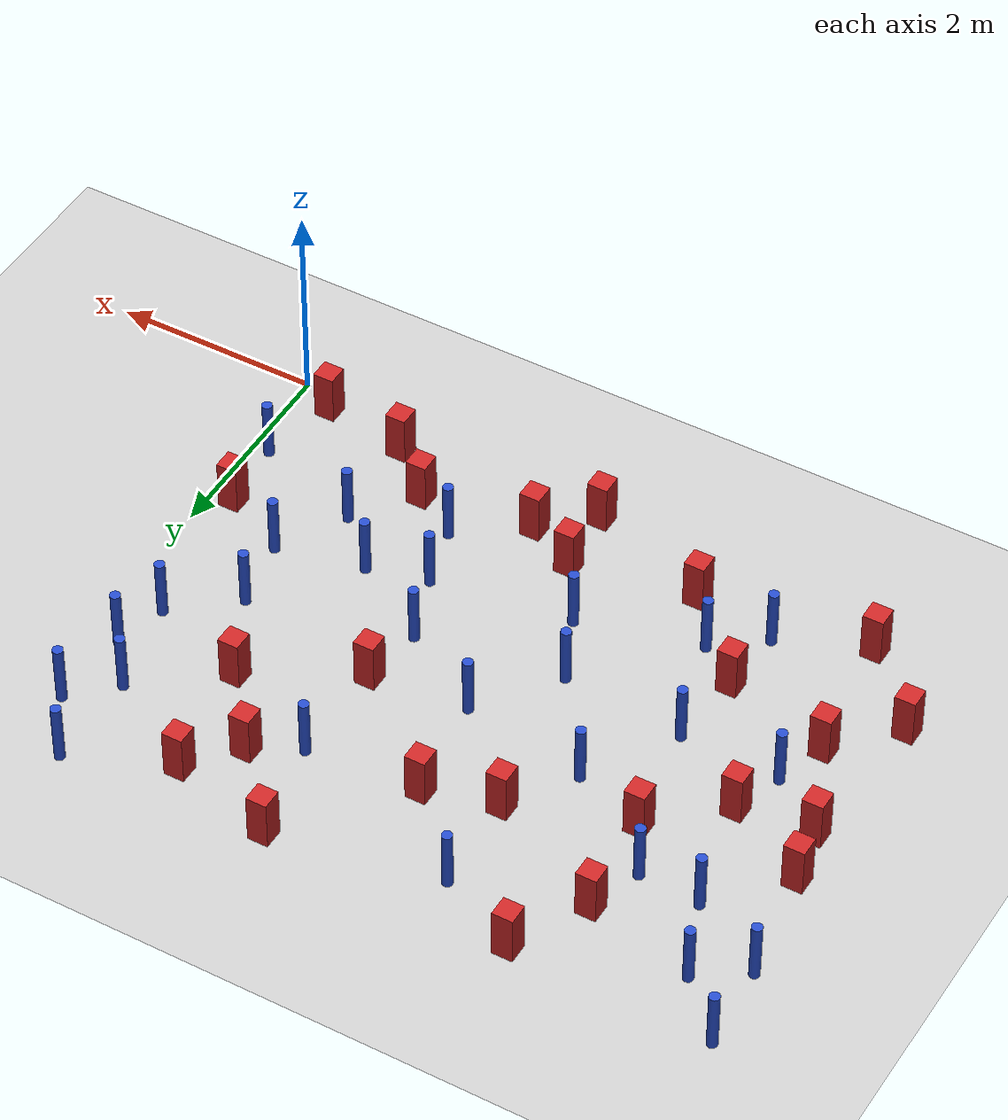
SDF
<sdf version="1.6">
 <world name="default">
  <model name="ground_plane">
   <static>1</static>
   <link name="link">
    <collision name="collision">
     <geometry><plane><normal>0 0 1</normal><size>100 100</size></plane></geometry>
     <surface><friction><ode><mu>100</mu><mu2>50</mu2></ode></friction></surface>
    </collision>
    <visual name="visual">
     <cast_shadows>0</cast_shadows>
     <geometry><plane><normal>0 0 1</normal><size>100 100</size></plane></geometry>
     <material>
      <ambient>1.0 1.0 1.0 1.0</ambient>
      <diffuse>0.8 0.8 0.8 1.0</diffuse>
      <specular>0.01 0.01 0.01 1.000000</specular>
     </material>
    </visual>
   </link>
  </model>
  <model name="square_post_obstacle2">
   <static>true</static>
   <pose>-2.59575525079 4.89425721059 1.91545236811e-07 -7.35059704564e-06 1.12565212e-07 2.39332434364e-05</pose>
   <link name="link">
    <pose>0 0 0.25 0 -0 0</pose>
    <inertial>
     <mass>100</mass>
     <inertia>
      <ixx>0.166667</ixx>
      <ixy>0</ixy>
      <ixz>0</ixz>
      <iyy>0.166667</iyy>
      <iyz>0</iyz>
      <izz>0.166667</izz>
     </inertia>
    </inertial>
    <collision name="collision"><geometry><box><size>.2 .2 .5</size></box></geometry></collision>
    <visual name="visual">
     <geometry><box><size>.2 .2 .5</size></box></geometry>
     <material>
      <script><name>Gazebo/Red</name><uri>file://media/materials/scripts/gazebo.material</uri></script>
     </material>
    </visual>
   </link>
  </model>
  <model name="pole_obstacle1">
   <static>true</static>
   <pose>-4.19937679218 4.57244880064 7.38925637345e-09 -8.47170692796e-08 1.24976764786e-08 -1.74513093032e-07</pose>
   <link name="link">
    <pose>0 0 0.3 0 -0 0</pose>
    <inertial>
     <mass>1</mass>
     <inertia><ixx>0.145833</ixx><ixy>0</ixy><ixz>0</ixz><iyy>0.145833</iyy><iyz>0</iyz><izz>0.125</izz></inertia>
    </inertial>
    <collision name="collision">
     <geometry><cylinder><radius>0.05</radius><length>.6</length></cylinder></geometry>
    </collision>
    <visual name="visual">
     <geometry><cylinder><radius>0.05</radius><length>.6</length></cylinder></geometry>
     <material>
      <script><name>Gazebo/Blue</name><uri>file://media/materials/scripts/gazebo.material</uri></script>
     </material>
    </visual>
   </link>
  </model>
  <model name="pole_obstacle6">
   <static>true</static>
   <pose>-6.42297541409 4.46587026032 7.38925637345e-09 -8.47170692796e-08 1.24976764786e-08 -1.74513093032e-07</pose>
   <link name="link">
    <pose>0 0 0.3 0 -0 0</pose>
    <inertial>
     <mass>1</mass>
     <inertia><ixx>0.145833</ixx><ixy>0</ixy><ixz>0</ixz><iyy>0.145833</iyy><iyz>0</iyz><izz>0.125</izz></inertia>
    </inertial>
    <collision name="collision">
     <geometry><cylinder><radius>0.05</radius><length>.6</length></cylinder></geometry>
    </collision>
    <visual name="visual">
     <geometry><cylinder><radius>0.05</radius><length>.6</length></cylinder></geometry>
     <material>
      <script><name>Gazebo/Blue</name><uri>file://media/materials/scripts/gazebo.material</uri></script>
     </material>
    </visual>
   </link>
  </model>
  <model name="pole_obstacle14">
   <static>true</static>
   <pose>-0.6309486153 4.05573531689 7.38925637345e-09 -8.471706928e-08 1.24976765086e-08 -1.74513093015e-07</pose>
   <link name="link">
    <pose>0 0 0.3 0 -0 0</pose>
    <inertial>
     <mass>1</mass>
     <inertia><ixx>0.145833</ixx><ixy>0</ixy><ixz>0</ixz><iyy>0.145833</iyy><iyz>0</iyz><izz>0.125</izz></inertia>
    </inertial>
    <collision name="collision">
     <geometry><cylinder><radius>0.05</radius><length>.6</length></cylinder></geometry>
    </collision>
    <visual name="visual">
     <geometry><cylinder><radius>0.05</radius><length>.6</length></cylinder></geometry>
     <material>
      <script><name>Gazebo/Blue</name><uri>file://media/materials/scripts/gazebo.material</uri></script>
     </material>
    </visual>
   </link>
  </model>
  <model name="pole_obstacle18">
   <static>true</static>
   <pose>-6.05022570618 2.16506669402 7.38925637345e-09 -8.47170692798e-08 1.24976764937e-08 -1.74513093023e-07</pose>
   <link name="link">
    <pose>0 0 0.3 0 -0 0</pose>
    <inertial>
     <mass>1</mass>
     <inertia><ixx>0.145833</ixx><ixy>0</ixy><ixz>0</ixz><iyy>0.145833</iyy><iyz>0</iyz><izz>0.125</izz></inertia>
    </inertial>
    <collision name="collision">
     <geometry><cylinder><radius>0.05</radius><length>.6</length></cylinder></geometry>
    </collision>
    <visual name="visual">
     <geometry><cylinder><radius>0.05</radius><length>.6</length></cylinder></geometry>
     <material>
      <script><name>Gazebo/Blue</name><uri>file://media/materials/scripts/gazebo.material</uri></script>
     </material>
    </visual>
   </link>
  </model>
  <model name="square_post_obstacle31">
   <static>true</static>
   <pose>-5.17602710416 1.40825064368 1.91545236811e-07 -7.35059704564e-06 1.12565212e-07 2.39332434364e-05</pose>
   <link name="link">
    <pose>0 0 0.25 0 -0 0</pose>
    <inertial>
     <mass>100</mass>
     <inertia>
      <ixx>0.166667</ixx>
      <ixy>0</ixy>
      <ixz>0</ixz>
      <iyy>0.166667</iyy>
      <iyz>0</iyz>
      <izz>0.166667</izz>
     </inertia>
    </inertial>
    <collision name="collision"><geometry><box><size>.2 .2 .5</size></box></geometry></collision>
    <visual name="visual">
     <geometry><box><size>.2 .2 .5</size></box></geometry>
     <material>
      <script><name>Gazebo/Red</name><uri>file://media/materials/scripts/gazebo.material</uri></script>
     </material>
    </visual>
   </link>
  </model>
  <model name="pole_obstacle35">
   <static>true</static>
   <pose>-2.39613981912 3.91076213373 7.38925637345e-09 -8.47170692798e-08 1.24976764939e-08 -1.74513093025e-07</pose>
   <link name="link">
    <pose>0 0 0.3 0 -0 0</pose>
    <inertial>
     <mass>1</mass>
     <inertia><ixx>0.145833</ixx><ixy>0</ixy><ixz>0</ixz><iyy>0.145833</iyy><iyz>0</iyz><izz>0.125</izz></inertia>
    </inertial>
    <collision name="collision">
     <geometry><cylinder><radius>0.05</radius><length>.6</length></cylinder></geometry>
    </collision>
    <visual name="visual">
     <geometry><cylinder><radius>0.05</radius><length>.6</length></cylinder></geometry>
     <material>
      <script><name>Gazebo/Blue</name><uri>file://media/materials/scripts/gazebo.material</uri></script>
     </material>
    </visual>
   </link>
  </model>
  <model name="pole_obstacle50">
   <static>true</static>
   <pose>-0.30817134673 3.63582544085 7.38925637345e-09 -8.471706928e-08 1.24976765084e-08 -1.74513093017e-07</pose>
   <link name="link">
    <pose>0 0 0.3 0 -0 0</pose>
    <inertial>
     <mass>1</mass>
     <inertia><ixx>0.145833</ixx><ixy>0</ixy><ixz>0</ixz><iyy>0.145833</iyy><iyz>0</iyz><izz>0.125</izz></inertia>
    </inertial>
    <collision name="collision">
     <geometry><cylinder><radius>0.05</radius><length>.6</length></cylinder></geometry>
    </collision>
    <visual name="visual">
     <geometry><cylinder><radius>0.05</radius><length>.6</length></cylinder></geometry>
     <material>
      <script><name>Gazebo/Blue</name><uri>file://media/materials/scripts/gazebo.material</uri></script>
     </material>
    </visual>
   </link>
  </model>
  <model name="square_post_obstacle59">
   <static>true</static>
   <pose>-6.73991651625 1.13253951802 1.91545236811e-07 -7.35059704564e-06 1.12565212e-07 2.39332434364e-05</pose>
   <link name="link">
    <pose>0 0 0.25 0 -0 0</pose>
    <inertial>
     <mass>100</mass>
     <inertia>
      <ixx>0.166667</ixx>
      <ixy>0</ixy>
      <ixz>0</ixz>
      <iyy>0.166667</iyy>
      <iyz>0</iyz>
      <izz>0.166667</izz>
     </inertia>
    </inertial>
    <collision name="collision"><geometry><box><size>.2 .2 .5</size></box></geometry></collision>
    <visual name="visual">
     <geometry><box><size>.2 .2 .5</size></box></geometry>
     <material>
      <script><name>Gazebo/Red</name><uri>file://media/materials/scripts/gazebo.material</uri></script>
     </material>
    </visual>
   </link>
  </model>
  <model name="square_post_obstacle60">
   <static>true</static>
   <pose>-4.17612816288 3.63277578221 1.91545236811e-07 -7.35059704564e-06 1.12565212e-07 2.39332434364e-05</pose>
   <link name="link">
    <pose>0 0 0.25 0 -0 0</pose>
    <inertial>
     <mass>100</mass>
     <inertia>
      <ixx>0.166667</ixx>
      <ixy>0</ixy>
      <ixz>0</ixz>
      <iyy>0.166667</iyy>
      <iyz>0</iyz>
      <izz>0.166667</izz>
     </inertia>
    </inertial>
    <collision name="collision"><geometry><box><size>.2 .2 .5</size></box></geometry></collision>
    <visual name="visual">
     <geometry><box><size>.2 .2 .5</size></box></geometry>
     <material>
      <script><name>Gazebo/Red</name><uri>file://media/materials/scripts/gazebo.material</uri></script>
     </material>
    </visual>
   </link>
  </model>
  <model name="pole_obstacle63">
   <static>true</static>
   <pose>-4.57205452292 2.99045766039 7.38925637345e-09 -8.47170692798e-08 1.24976764937e-08 -1.74513093023e-07</pose>
   <link name="link">
    <pose>0 0 0.3 0 -0 0</pose>
    <inertial>
     <mass>1</mass>
     <inertia><ixx>0.145833</ixx><ixy>0</ixy><ixz>0</ixz><iyy>0.145833</iyy><iyz>0</iyz><izz>0.125</izz></inertia>
    </inertial>
    <collision name="collision">
     <geometry><cylinder><radius>0.05</radius><length>.6</length></cylinder></geometry>
    </collision>
    <visual name="visual">
     <geometry><cylinder><radius>0.05</radius><length>.6</length></cylinder></geometry>
     <material>
      <script><name>Gazebo/Blue</name><uri>file://media/materials/scripts/gazebo.material</uri></script>
     </material>
    </visual>
   </link>
  </model>
  <model name="pole_obstacle68">
   <static>true</static>
   <pose>-4.76935735511 1.10728999465 7.38925637345e-09 -8.471706928e-08 1.24976765134e-08 -1.74513093015e-07</pose>
   <link name="link">
    <pose>0 0 0.3 0 -0 0</pose>
    <inertial>
     <mass>1</mass>
     <inertia><ixx>0.145833</ixx><ixy>0</ixy><ixz>0</ixz><iyy>0.145833</iyy><iyz>0</iyz><izz>0.125</izz></inertia>
    </inertial>
    <collision name="collision">
     <geometry><cylinder><radius>0.05</radius><length>.6</length></cylinder></geometry>
    </collision>
    <visual name="visual">
     <geometry><cylinder><radius>0.05</radius><length>.6</length></cylinder></geometry>
     <material>
      <script><name>Gazebo/Blue</name><uri>file://media/materials/scripts/gazebo.material</uri></script>
     </material>
    </visual>
   </link>
  </model>
  <model name="square_post_obstacle74">
   <static>true</static>
   <pose>-0.232203839314 1.64290250572 1.91545236811e-07 -7.35059704564e-06 1.12565212e-07 2.39332434364e-05</pose>
   <link name="link">
    <pose>0 0 0.25 0 -0 0</pose>
    <inertial>
     <mass>100</mass>
     <inertia>
      <ixx>0.166667</ixx>
      <ixy>0</ixy>
      <ixz>0</ixz>
      <iyy>0.166667</iyy>
      <iyz>0</iyz>
      <izz>0.166667</izz>
     </inertia>
    </inertial>
    <collision name="collision"><geometry><box><size>.2 .2 .5</size></box></geometry></collision>
    <visual name="visual">
     <geometry><box><size>.2 .2 .5</size></box></geometry>
     <material>
      <script><name>Gazebo/Red</name><uri>file://media/materials/scripts/gazebo.material</uri></script>
     </material>
    </visual>
   </link>
  </model>
  <model name="pole_obstacle77">
   <static>true</static>
   <pose>-0.245551037954 4.4329295722 7.38925637345e-09 -8.47170692799e-08 1.2497676507e-08 -1.74513093018e-07</pose>
   <link name="link">
    <pose>0 0 0.3 0 -0 0</pose>
    <inertial>
     <mass>1</mass>
     <inertia><ixx>0.145833</ixx><ixy>0</ixy><ixz>0</ixz><iyy>0.145833</iyy><iyz>0</iyz><izz>0.125</izz></inertia>
    </inertial>
    <collision name="collision">
     <geometry><cylinder><radius>0.05</radius><length>.6</length></cylinder></geometry>
    </collision>
    <visual name="visual">
     <geometry><cylinder><radius>0.05</radius><length>.6</length></cylinder></geometry>
     <material>
      <script><name>Gazebo/Blue</name><uri>file://media/materials/scripts/gazebo.material</uri></script>
     </material>
    </visual>
   </link>
  </model>
  <model name="pole_obstacle78">
   <static>true</static>
   <pose>-0.615470836959 5.01504123626 7.38925637345e-09 -8.471706928e-08 1.24976765086e-08 -1.74513093015e-07</pose>
   <link name="link">
    <pose>0 0 0.3 0 -0 0</pose>
    <inertial>
     <mass>1</mass>
     <inertia><ixx>0.145833</ixx><ixy>0</ixy><ixz>0</ixz><iyy>0.145833</iyy><iyz>0</iyz><izz>0.125</izz></inertia>
    </inertial>
    <collision name="collision">
     <geometry><cylinder><radius>0.05</radius><length>.6</length></cylinder></geometry>
    </collision>
    <visual name="visual">
     <geometry><cylinder><radius>0.05</radius><length>.6</length></cylinder></geometry>
     <material>
      <script><name>Gazebo/Blue</name><uri>file://media/materials/scripts/gazebo.material</uri></script>
     </material>
    </visual>
   </link>
  </model>
  <model name="square_post_obstacle85">
   <static>true</static>
   <pose>-6.60383035595 2.57100134681 1.91545236811e-07 -7.35059704564e-06 1.12565212e-07 2.39332434364e-05</pose>
   <link name="link">
    <pose>0 0 0.25 0 -0 0</pose>
    <inertial>
     <mass>100</mass>
     <inertia>
      <ixx>0.166667</ixx>
      <ixy>0</ixy>
      <ixz>0</ixz>
      <iyy>0.166667</iyy>
      <iyz>0</iyz>
      <izz>0.166667</izz>
     </inertia>
    </inertial>
    <collision name="collision"><geometry><box><size>.2 .2 .5</size></box></geometry></collision>
    <visual name="visual">
     <geometry><box><size>.2 .2 .5</size></box></geometry>
     <material>
      <script><name>Gazebo/Red</name><uri>file://media/materials/scripts/gazebo.material</uri></script>
     </material>
    </visual>
   </link>
  </model>
  <model name="pole_obstacle97">
   <static>true</static>
   <pose>-5.22630114224 0.75034782489 7.38925637345e-09 -8.47170692799e-08 1.24976765038e-08 -1.74513093018e-07</pose>
   <link name="link">
    <pose>0 0 0.3 0 -0 0</pose>
    <inertial>
     <mass>1</mass>
     <inertia><ixx>0.145833</ixx><ixy>0</ixy><ixz>0</ixz><iyy>0.145833</iyy><iyz>0</iyz><izz>0.125</izz></inertia>
    </inertial>
    <collision name="collision">
     <geometry><cylinder><radius>0.05</radius><length>.6</length></cylinder></geometry>
    </collision>
    <visual name="visual">
     <geometry><cylinder><radius>0.05</radius><length>.6</length></cylinder></geometry>
     <material>
      <script><name>Gazebo/Blue</name><uri>file://media/materials/scripts/gazebo.material</uri></script>
     </material>
    </visual>
   </link>
  </model>
  <model name="pole_obstacle101">
   <static>true</static>
   <pose>-0.434758342722 3.12755812158 7.38925637345e-09 -8.471706928e-08 1.24976765084e-08 -1.74513093017e-07</pose>
   <link name="link">
    <pose>0 0 0.3 0 -0 0</pose>
    <inertial>
     <mass>1</mass>
     <inertia><ixx>0.145833</ixx><ixy>0</ixy><ixz>0</ixz><iyy>0.145833</iyy><iyz>0</iyz><izz>0.125</izz></inertia>
    </inertial>
    <collision name="collision">
     <geometry><cylinder><radius>0.05</radius><length>.6</length></cylinder></geometry>
    </collision>
    <visual name="visual">
     <geometry><cylinder><radius>0.05</radius><length>.6</length></cylinder></geometry>
     <material>
      <script><name>Gazebo/Blue</name><uri>file://media/materials/scripts/gazebo.material</uri></script>
     </material>
    </visual>
   </link>
  </model>
  <model name="square_post_obstacle89">
   <static>true</static>
   <pose>-4.42486283952 0.624780986139 1.91545236811e-07 -7.35059704564e-06 1.12565212e-07 2.39332434364e-05</pose>
   <link name="link">
    <pose>0 0 0.25 0 -0 0</pose>
    <inertial>
     <mass>100</mass>
     <inertia>
      <ixx>0.166667</ixx>
      <ixy>0</ixy>
      <ixz>0</ixz>
      <iyy>0.166667</iyy>
      <iyz>0</iyz>
      <izz>0.166667</izz>
     </inertia>
    </inertial>
    <collision name="collision"><geometry><box><size>.2 .2 .5</size></box></geometry></collision>
    <visual name="visual">
     <geometry><box><size>.2 .2 .5</size></box></geometry>
     <material>
      <script><name>Gazebo/Red</name><uri>file://media/materials/scripts/gazebo.material</uri></script>
     </material>
    </visual>
   </link>
  </model>
  <model name="square_post_obstacle93">
   <static>true</static>
   <pose>-0.355991902372 0.198015686612 1.91545236811e-07 -7.35059704564e-06 1.12565212e-07 2.39332434364e-05</pose>
   <link name="link">
    <pose>0 0 0.25 0 -0 0</pose>
    <inertial>
     <mass>100</mass>
     <inertia>
      <ixx>0.166667</ixx>
      <ixy>0</ixy>
      <ixz>0</ixz>
      <iyy>0.166667</iyy>
      <iyz>0</iyz>
      <izz>0.166667</izz>
     </inertia>
    </inertial>
    <collision name="collision"><geometry><box><size>.2 .2 .5</size></box></geometry></collision>
    <visual name="visual">
     <geometry><box><size>.2 .2 .5</size></box></geometry>
     <material>
      <script><name>Gazebo/Red</name><uri>file://media/materials/scripts/gazebo.material</uri></script>
     </material>
    </visual>
   </link>
  </model>
  <model name="pole_obstacle106">
   <static>true</static>
   <pose>-6.1307519302 3.73252260814 7.38925637345e-09 -8.47170692798e-08 1.24976764937e-08 -1.74513093023e-07</pose>
   <link name="link">
    <pose>0 0 0.3 0 -0 0</pose>
    <inertial>
     <mass>1</mass>
     <inertia><ixx>0.145833</ixx><ixy>0</ixy><ixz>0</ixz><iyy>0.145833</iyy><iyz>0</iyz><izz>0.125</izz></inertia>
    </inertial>
    <collision name="collision">
     <geometry><cylinder><radius>0.05</radius><length>.6</length></cylinder></geometry>
    </collision>
    <visual name="visual">
     <geometry><cylinder><radius>0.05</radius><length>.6</length></cylinder></geometry>
     <material>
      <script><name>Gazebo/Blue</name><uri>file://media/materials/scripts/gazebo.material</uri></script>
     </material>
    </visual>
   </link>
  </model>
  <model name="pole_obstacle107">
   <static>true</static>
   <pose>-5.08717280827 2.14712405167 7.38925637345e-09 -8.47170692798e-08 1.24976764937e-08 -1.74513093023e-07</pose>
   <link name="link">
    <pose>0 0 0.3 0 -0 0</pose>
    <inertial>
     <mass>1</mass>
     <inertia><ixx>0.145833</ixx><ixy>0</ixy><ixz>0</ixz><iyy>0.145833</iyy><iyz>0</iyz><izz>0.125</izz></inertia>
    </inertial>
    <collision name="collision">
     <geometry><cylinder><radius>0.05</radius><length>.6</length></cylinder></geometry>
    </collision>
    <visual name="visual">
     <geometry><cylinder><radius>0.05</radius><length>.6</length></cylinder></geometry>
     <material>
      <script><name>Gazebo/Blue</name><uri>file://media/materials/scripts/gazebo.material</uri></script>
     </material>
    </visual>
   </link>
  </model>
  <model name="square_post_obstacle97">
   <static>true</static>
   <pose>-1.19835819833 0.331020461687 1.91545236811e-07 -7.35059704564e-06 1.12565212e-07 2.39332434364e-05</pose>
   <link name="link">
    <pose>0 0 0.25 0 -0 0</pose>
    <inertial>
     <mass>100</mass>
     <inertia>
      <ixx>0.166667</ixx>
      <ixy>0</ixy>
      <ixz>0</ixz>
      <iyy>0.166667</iyy>
      <iyz>0</iyz>
      <izz>0.166667</izz>
     </inertia>
    </inertial>
    <collision name="collision"><geometry><box><size>.2 .2 .5</size></box></geometry></collision>
    <visual name="visual">
     <geometry><box><size>.2 .2 .5</size></box></geometry>
     <material>
      <script><name>Gazebo/Red</name><uri>file://media/materials/scripts/gazebo.material</uri></script>
     </material>
    </visual>
   </link>
  </model>
  <model name="pole_obstacle110">
   <static>true</static>
   <pose>-5.5392635396 3.70245841746 7.38925637345e-09 -8.47170692798e-08 1.24976764937e-08 -1.74513093023e-07</pose>
   <link name="link">
    <pose>0 0 0.3 0 -0 0</pose>
    <inertial>
     <mass>1</mass>
     <inertia><ixx>0.145833</ixx><ixy>0</ixy><ixz>0</ixz><iyy>0.145833</iyy><iyz>0</iyz><izz>0.125</izz></inertia>
    </inertial>
    <collision name="collision">
     <geometry><cylinder><radius>0.05</radius><length>.6</length></cylinder></geometry>
    </collision>
    <visual name="visual">
     <geometry><cylinder><radius>0.05</radius><length>.6</length></cylinder></geometry>
     <material>
      <script><name>Gazebo/Blue</name><uri>file://media/materials/scripts/gazebo.material</uri></script>
     </material>
    </visual>
   </link>
  </model>
  <model name="square_post_obstacle101">
   <static>true</static>
   <pose>-3.49303474325 3.82187697024 1.91545236811e-07 -7.35059704564e-06 1.12565212e-07 2.39332434364e-05</pose>
   <link name="link">
    <pose>0 0 0.25 0 -0 0</pose>
    <inertial>
     <mass>100</mass>
     <inertia>
      <ixx>0.166667</ixx>
      <ixy>0</ixy>
      <ixz>0</ixz>
      <iyy>0.166667</iyy>
      <iyz>0</iyz>
      <izz>0.166667</izz>
     </inertia>
    </inertial>
    <collision name="collision"><geometry><box><size>.2 .2 .5</size></box></geometry></collision>
    <visual name="visual">
     <geometry><box><size>.2 .2 .5</size></box></geometry>
     <material>
      <script><name>Gazebo/Red</name><uri>file://media/materials/scripts/gazebo.material</uri></script>
     </material>
    </visual>
   </link>
  </model>
  <model name="pole_obstacle119">
   <static>true</static>
   <pose>-0.993205984511 2.64767409479 7.38925637345e-09 -8.47170692799e-08 1.24976765063e-08 -1.74513093018e-07</pose>
   <link name="link">
    <pose>0 0 0.3 0 -0 0</pose>
    <inertial>
     <mass>1</mass>
     <inertia><ixx>0.145833</ixx><ixy>0</ixy><ixz>0</ixz><iyy>0.145833</iyy><iyz>0</iyz><izz>0.125</izz></inertia>
    </inertial>
    <collision name="collision">
     <geometry><cylinder><radius>0.05</radius><length>.6</length></cylinder></geometry>
    </collision>
    <visual name="visual">
     <geometry><cylinder><radius>0.05</radius><length>.6</length></cylinder></geometry>
     <material>
      <script><name>Gazebo/Blue</name><uri>file://media/materials/scripts/gazebo.material</uri></script>
     </material>
    </visual>
   </link>
  </model>
  <model name="square_post_obstacle110">
   <static>true</static>
   <pose>-1.67150105064 0.760639121602 1.91545236811e-07 -7.35059704564e-06 1.12565212e-07 2.39332434364e-05</pose>
   <link name="link">
    <pose>0 0 0.25 0 -0 0</pose>
    <inertial>
     <mass>100</mass>
     <inertia>
      <ixx>0.166667</ixx>
      <ixy>0</ixy>
      <ixz>0</ixz>
      <iyy>0.166667</iyy>
      <iyz>0</iyz>
      <izz>0.166667</izz>
     </inertia>
    </inertial>
    <collision name="collision"><geometry><box><size>.2 .2 .5</size></box></geometry></collision>
    <visual name="visual">
     <geometry><box><size>.2 .2 .5</size></box></geometry>
     <material>
      <script><name>Gazebo/Red</name><uri>file://media/materials/scripts/gazebo.material</uri></script>
     </material>
    </visual>
   </link>
  </model>
  <model name="square_post_obstacle112">
   <static>true</static>
   <pose>-2.43023422149 2.90336328362 1.91545236811e-07 -7.35059704564e-06 1.12565212e-07 2.39332434364e-05</pose>
   <link name="link">
    <pose>0 0 0.25 0 -0 0</pose>
    <inertial>
     <mass>100</mass>
     <inertia>
      <ixx>0.166667</ixx>
      <ixy>0</ixy>
      <ixz>0</ixz>
      <iyy>0.166667</iyy>
      <iyz>0</iyz>
      <izz>0.166667</izz>
     </inertia>
    </inertial>
    <collision name="collision"><geometry><box><size>.2 .2 .5</size></box></geometry></collision>
    <visual name="visual">
     <geometry><box><size>.2 .2 .5</size></box></geometry>
     <material>
      <script><name>Gazebo/Red</name><uri>file://media/materials/scripts/gazebo.material</uri></script>
     </material>
    </visual>
   </link>
  </model>
  <model name="pole_obstacle125">
   <static>true</static>
   <pose>-3.34923636319 2.78712911026 7.38925637345e-09 -8.47170692798e-08 1.24976764939e-08 -1.74513093025e-07</pose>
   <link name="link">
    <pose>0 0 0.3 0 -0 0</pose>
    <inertial>
     <mass>1</mass>
     <inertia><ixx>0.145833</ixx><ixy>0</ixy><ixz>0</ixz><iyy>0.145833</iyy><iyz>0</iyz><izz>0.125</izz></inertia>
    </inertial>
    <collision name="collision">
     <geometry><cylinder><radius>0.05</radius><length>.6</length></cylinder></geometry>
    </collision>
    <visual name="visual">
     <geometry><cylinder><radius>0.05</radius><length>.6</length></cylinder></geometry>
     <material>
      <script><name>Gazebo/Blue</name><uri>file://media/materials/scripts/gazebo.material</uri></script>
     </material>
    </visual>
   </link>
  </model>
  <model name="pole_obstacle129">
   <static>true</static>
   <pose>-2.27558066869 1.62840047031 7.38925637345e-09 -8.471706928e-08 1.24976765152e-08 -1.74513093012e-07</pose>
   <link name="link">
    <pose>0 0 0.3 0 -0 0</pose>
    <inertial>
     <mass>1</mass>
     <inertia><ixx>0.145833</ixx><ixy>0</ixy><ixz>0</ixz><iyy>0.145833</iyy><iyz>0</iyz><izz>0.125</izz></inertia>
    </inertial>
    <collision name="collision">
     <geometry><cylinder><radius>0.05</radius><length>.6</length></cylinder></geometry>
    </collision>
    <visual name="visual">
     <geometry><cylinder><radius>0.05</radius><length>.6</length></cylinder></geometry>
     <material>
      <script><name>Gazebo/Blue</name><uri>file://media/materials/scripts/gazebo.material</uri></script>
     </material>
    </visual>
   </link>
  </model>
  <model name="square_post_obstacle116">
   <static>true</static>
   <pose>-3.20778884974 0.18609494792 1.91545236811e-07 -7.35059704564e-06 1.12565212e-07 2.39332434364e-05</pose>
   <link name="link">
    <pose>0 0 0.25 0 -0 0</pose>
    <inertial>
     <mass>100</mass>
     <inertia>
      <ixx>0.166667</ixx>
      <ixy>0</ixy>
      <ixz>0</ixz>
      <iyy>0.166667</iyy>
      <iyz>0</iyz>
      <izz>0.166667</izz>
     </inertia>
    </inertial>
    <collision name="collision"><geometry><box><size>.2 .2 .5</size></box></geometry></collision>
    <visual name="visual">
     <geometry><box><size>.2 .2 .5</size></box></geometry>
     <material>
      <script><name>Gazebo/Red</name><uri>file://media/materials/scripts/gazebo.material</uri></script>
     </material>
    </visual>
   </link>
  </model>
  <model name="square_post_obstacle118">
   <static>true</static>
   <pose>-6.70752519223 3.09785944278 1.91545236811e-07 -7.35059704564e-06 1.12565212e-07 2.39332434364e-05</pose>
   <link name="link">
    <pose>0 0 0.25 0 -0 0</pose>
    <inertial>
     <mass>100</mass>
     <inertia>
      <ixx>0.166667</ixx>
      <ixy>0</ixy>
      <ixz>0</ixz>
      <iyy>0.166667</iyy>
      <iyz>0</iyz>
      <izz>0.166667</izz>
     </inertia>
    </inertial>
    <collision name="collision"><geometry><box><size>.2 .2 .5</size></box></geometry></collision>
    <visual name="visual">
     <geometry><box><size>.2 .2 .5</size></box></geometry>
     <material>
      <script><name>Gazebo/Red</name><uri>file://media/materials/scripts/gazebo.material</uri></script>
     </material>
    </visual>
   </link>
  </model>
  <model name="square_post_obstacle122">
   <static>true</static>
   <pose>-1.58700233289 4.62899842589 1.91545236811e-07 -7.35059704564e-06 1.12565212e-07 2.39332434364e-05</pose>
   <link name="link">
    <pose>0 0 0.25 0 -0 0</pose>
    <inertial>
     <mass>100</mass>
     <inertia>
      <ixx>0.166667</ixx>
      <ixy>0</ixy>
      <ixz>0</ixz>
      <iyy>0.166667</iyy>
      <iyz>0</iyz>
      <izz>0.166667</izz>
     </inertia>
    </inertial>
    <collision name="collision"><geometry><box><size>.2 .2 .5</size></box></geometry></collision>
    <visual name="visual">
     <geometry><box><size>.2 .2 .5</size></box></geometry>
     <material>
      <script><name>Gazebo/Red</name><uri>file://media/materials/scripts/gazebo.material</uri></script>
     </material>
    </visual>
   </link>
  </model>
  <model name="pole_obstacle139">
   <static>true</static>
   <pose>-1.23360119294 1.30831827169 7.38925637345e-09 -8.471706928e-08 1.24976765079e-08 -1.74513093017e-07</pose>
   <link name="link">
    <pose>0 0 0.3 0 -0 0</pose>
    <inertial>
     <mass>1</mass>
     <inertia><ixx>0.145833</ixx><ixy>0</ixy><ixz>0</ixz><iyy>0.145833</iyy><iyz>0</iyz><izz>0.125</izz></inertia>
    </inertial>
    <collision name="collision">
     <geometry><cylinder><radius>0.05</radius><length>.6</length></cylinder></geometry>
    </collision>
    <visual name="visual">
     <geometry><cylinder><radius>0.05</radius><length>.6</length></cylinder></geometry>
     <material>
      <script><name>Gazebo/Blue</name><uri>file://media/materials/scripts/gazebo.material</uri></script>
     </material>
    </visual>
   </link>
  </model>
  <model name="square_post_obstacle124">
   <static>true</static>
   <pose>-3.24586749834 0.849571605337 1.91545236811e-07 -7.35059704564e-06 1.12565212e-07 2.39332434364e-05</pose>
   <link name="link">
    <pose>0 0 0.25 0 -0 0</pose>
    <inertial>
     <mass>100</mass>
     <inertia>
      <ixx>0.166667</ixx>
      <ixy>0</ixy>
      <ixz>0</ixz>
      <iyy>0.166667</iyy>
      <iyz>0</iyz>
      <izz>0.166667</izz>
     </inertia>
    </inertial>
    <collision name="collision"><geometry><box><size>.2 .2 .5</size></box></geometry></collision>
    <visual name="visual">
     <geometry><box><size>.2 .2 .5</size></box></geometry>
     <material>
      <script><name>Gazebo/Red</name><uri>file://media/materials/scripts/gazebo.material</uri></script>
     </material>
    </visual>
   </link>
  </model>
  <model name="pole_obstacle142">
   <static>true</static>
   <pose>-0.869587750022 1.96926957475 7.38925637345e-09 -8.47170692799e-08 1.24976765066e-08 -1.74513093016e-07</pose>
   <link name="link">
    <pose>0 0 0.3 0 -0 0</pose>
    <inertial>
     <mass>1</mass>
     <inertia><ixx>0.145833</ixx><ixy>0</ixy><ixz>0</ixz><iyy>0.145833</iyy><iyz>0</iyz><izz>0.125</izz></inertia>
    </inertial>
    <collision name="collision">
     <geometry><cylinder><radius>0.05</radius><length>.6</length></cylinder></geometry>
    </collision>
    <visual name="visual">
     <geometry><cylinder><radius>0.05</radius><length>.6</length></cylinder></geometry>
     <material>
      <script><name>Gazebo/Blue</name><uri>file://media/materials/scripts/gazebo.material</uri></script>
     </material>
    </visual>
   </link>
  </model>
  <model name="square_post_obstacle130">
   <static>true</static>
   <pose>-6.06814301344 0.411994665905 1.91545236811e-07 -7.35059704564e-06 1.12565212e-07 2.39332434364e-05</pose>
   <link name="link">
    <pose>0 0 0.25 0 -0 0</pose>
    <inertial>
     <mass>100</mass>
     <inertia>
      <ixx>0.166667</ixx>
      <ixy>0</ixy>
      <ixz>0</ixz>
      <iyy>0.166667</iyy>
      <iyz>0</iyz>
      <izz>0.166667</izz>
     </inertia>
    </inertial>
    <collision name="collision"><geometry><box><size>.2 .2 .5</size></box></geometry></collision>
    <visual name="visual">
     <geometry><box><size>.2 .2 .5</size></box></geometry>
     <material>
      <script><name>Gazebo/Red</name><uri>file://media/materials/scripts/gazebo.material</uri></script>
     </material>
    </visual>
   </link>
  </model>
  <model name="square_post_obstacle133">
   <static>true</static>
   <pose>-1.96142270488 4.16506050493 1.91545236811e-07 -7.35059704564e-06 1.12565212e-07 2.39332434364e-05</pose>
   <link name="link">
    <pose>0 0 0.25 0 -0 0</pose>
    <inertial>
     <mass>100</mass>
     <inertia>
      <ixx>0.166667</ixx>
      <ixy>0</ixy>
      <ixz>0</ixz>
      <iyy>0.166667</iyy>
      <iyz>0</iyz>
      <izz>0.166667</izz>
     </inertia>
    </inertial>
    <collision name="collision"><geometry><box><size>.2 .2 .5</size></box></geometry></collision>
    <visual name="visual">
     <geometry><box><size>.2 .2 .5</size></box></geometry>
     <material>
      <script><name>Gazebo/Red</name><uri>file://media/materials/scripts/gazebo.material</uri></script>
     </material>
    </visual>
   </link>
  </model>
  <model name="pole_obstacle144">
   <static>true</static>
   <pose>-3.61500781977 1.41958046419 7.38925637345e-09 -8.471706928e-08 1.24976765152e-08 -1.74513093012e-07</pose>
   <link name="link">
    <pose>0 0 0.3 0 -0 0</pose>
    <inertial>
     <mass>1</mass>
     <inertia><ixx>0.145833</ixx><ixy>0</ixy><ixz>0</ixz><iyy>0.145833</iyy><iyz>0</iyz><izz>0.125</izz></inertia>
    </inertial>
    <collision name="collision">
     <geometry><cylinder><radius>0.05</radius><length>.6</length></cylinder></geometry>
    </collision>
    <visual name="visual">
     <geometry><cylinder><radius>0.05</radius><length>.6</length></cylinder></geometry>
     <material>
      <script><name>Gazebo/Blue</name><uri>file://media/materials/scripts/gazebo.material</uri></script>
     </material>
    </visual>
   </link>
  </model>
  <model name="square_post_obstacle137">
   <static>true</static>
   <pose>-5.27629412856 3.2334624756 1.91545236811e-07 -7.35059704564e-06 1.12565212e-07 2.39332434364e-05</pose>
   <link name="link">
    <pose>0 0 0.25 0 -0 0</pose>
    <inertial>
     <mass>100</mass>
     <inertia>
      <ixx>0.166667</ixx>
      <ixy>0</ixy>
      <ixz>0</ixz>
      <iyy>0.166667</iyy>
      <iyz>0</iyz>
      <izz>0.166667</izz>
     </inertia>
    </inertial>
    <collision name="collision"><geometry><box><size>.2 .2 .5</size></box></geometry></collision>
    <visual name="visual">
     <geometry><box><size>.2 .2 .5</size></box></geometry>
     <material>
      <script><name>Gazebo/Red</name><uri>file://media/materials/scripts/gazebo.material</uri></script>
     </material>
    </visual>
   </link>
  </model>
  <model name="square_post_obstacle140">
   <static>true</static>
   <pose>-2.75185578342 0.598091898373 1.91545236811e-07 -7.35059704564e-06 1.12565212e-07 2.39332434364e-05</pose>
   <link name="link">
    <pose>0 0 0.25 0 -0 0</pose>
    <inertial>
     <mass>100</mass>
     <inertia>
      <ixx>0.166667</ixx>
      <ixy>0</ixy>
      <ixz>0</ixz>
      <iyy>0.166667</iyy>
      <iyz>0</iyz>
      <izz>0.166667</izz>
     </inertia>
    </inertial>
    <collision name="collision"><geometry><box><size>.2 .2 .5</size></box></geometry></collision>
    <visual name="visual">
     <geometry><box><size>.2 .2 .5</size></box></geometry>
     <material>
      <script><name>Gazebo/Red</name><uri>file://media/materials/scripts/gazebo.material</uri></script>
     </material>
    </visual>
   </link>
  </model>
  <model name="square_post_obstacle144">
   <static>true</static>
   <pose>-6.2225508885 1.68611967142 1.91545236811e-07 -7.35059704564e-06 1.12565212e-07 2.39332434364e-05</pose>
   <link name="link">
    <pose>0 0 0.25 0 -0 0</pose>
    <inertial>
     <mass>100</mass>
     <inertia>
      <ixx>0.166667</ixx>
      <ixy>0</ixy>
      <ixz>0</ixz>
      <iyy>0.166667</iyy>
      <iyz>0</iyz>
      <izz>0.166667</izz>
     </inertia>
    </inertial>
    <collision name="collision"><geometry><box><size>.2 .2 .5</size></box></geometry></collision>
    <visual name="visual">
     <geometry><box><size>.2 .2 .5</size></box></geometry>
     <material>
      <script><name>Gazebo/Red</name><uri>file://media/materials/scripts/gazebo.material</uri></script>
     </material>
    </visual>
   </link>
  </model>
  <model name="pole_obstacle161">
   <static>true</static>
   <pose>-6.87228317746 4.16144585212 7.38925637345e-09 -8.47170692796e-08 1.24976764786e-08 -1.74513093032e-07</pose>
   <link name="link">
    <pose>0 0 0.3 0 -0 0</pose>
    <inertial>
     <mass>1</mass>
     <inertia><ixx>0.145833</ixx><ixy>0</ixy><ixz>0</ixz><iyy>0.145833</iyy><iyz>0</iyz><izz>0.125</izz></inertia>
    </inertial>
    <collision name="collision">
     <geometry><cylinder><radius>0.05</radius><length>.6</length></cylinder></geometry>
    </collision>
    <visual name="visual">
     <geometry><cylinder><radius>0.05</radius><length>.6</length></cylinder></geometry>
     <material>
      <script><name>Gazebo/Blue</name><uri>file://media/materials/scripts/gazebo.material</uri></script>
     </material>
    </visual>
   </link>
  </model>
  <model name="square_post_obstacle165">
   <static>true</static>
   <pose>-4.99748392466 4.94592251812 1.91545236811e-07 -7.35059704564e-06 1.12565212e-07 2.39332434364e-05</pose>
   <link name="link">
    <pose>0 0 0.25 0 -0 0</pose>
    <inertial>
     <mass>100</mass>
     <inertia>
      <ixx>0.166667</ixx>
      <ixy>0</ixy>
      <ixz>0</ixz>
      <iyy>0.166667</iyy>
      <iyz>0</iyz>
      <izz>0.166667</izz>
     </inertia>
    </inertial>
    <collision name="collision"><geometry><box><size>.2 .2 .5</size></box></geometry></collision>
    <visual name="visual">
     <geometry><box><size>.2 .2 .5</size></box></geometry>
     <material>
      <script><name>Gazebo/Red</name><uri>file://media/materials/scripts/gazebo.material</uri></script>
     </material>
    </visual>
   </link>
  </model>
  <model name="pole_obstacle178">
   <static>true</static>
   <pose>-2.50667592558 2.28382350818 7.38925637345e-09 -8.47170692798e-08 1.24976764939e-08 -1.74513093025e-07</pose>
   <link name="link">
    <pose>0 0 0.3 0 -0 0</pose>
    <inertial>
     <mass>1</mass>
     <inertia><ixx>0.145833</ixx><ixy>0</ixy><ixz>0</ixz><iyy>0.145833</iyy><iyz>0</iyz><izz>0.125</izz></inertia>
    </inertial>
    <collision name="collision">
     <geometry><cylinder><radius>0.05</radius><length>.6</length></cylinder></geometry>
    </collision>
    <visual name="visual">
     <geometry><cylinder><radius>0.05</radius><length>.6</length></cylinder></geometry>
     <material>
      <script><name>Gazebo/Blue</name><uri>file://media/materials/scripts/gazebo.material</uri></script>
     </material>
    </visual>
   </link>
  </model>
  <model name="pole_obstacle179">
   <static>true</static>
   <pose>-2.11404825273 1.03144602317 7.38925637345e-09 -8.47170692793e-08 1.2497676438e-08 -1.74513093043e-07</pose>
   <link name="link">
    <pose>0 0 0.3 0 -0 0</pose>
    <inertial>
     <mass>1</mass>
     <inertia><ixx>0.145833</ixx><ixy>0</ixy><ixz>0</ixz><iyy>0.145833</iyy><iyz>0</iyz><izz>0.125</izz></inertia>
    </inertial>
    <collision name="collision">
     <geometry><cylinder><radius>0.05</radius><length>.6</length></cylinder></geometry>
    </collision>
    <visual name="visual">
     <geometry><cylinder><radius>0.05</radius><length>.6</length></cylinder></geometry>
     <material>
      <script><name>Gazebo/Blue</name><uri>file://media/materials/scripts/gazebo.material</uri></script>
     </material>
    </visual>
   </link>
  </model>
  <model name="pole_obstacle182">
   <static>true</static>
   <pose>-6.919571116 4.9742770652 7.38925637345e-09 -8.47170692796e-08 1.24976764786e-08 -1.74513093032e-07</pose>
   <link name="link">
    <pose>0 0 0.3 0 -0 0</pose>
    <inertial>
     <mass>1</mass>
     <inertia><ixx>0.145833</ixx><ixy>0</ixy><ixz>0</ixz><iyy>0.145833</iyy><iyz>0</iyz><izz>0.125</izz></inertia>
    </inertial>
    <collision name="collision">
     <geometry><cylinder><radius>0.05</radius><length>.6</length></cylinder></geometry>
    </collision>
    <visual name="visual">
     <geometry><cylinder><radius>0.05</radius><length>.6</length></cylinder></geometry>
     <material>
      <script><name>Gazebo/Blue</name><uri>file://media/materials/scripts/gazebo.material</uri></script>
     </material>
    </visual>
   </link>
  </model>
  <model name="square_post_obstacle174">
   <static>true</static>
   <pose>-5.37389811018 4.22617949201 1.91545236811e-07 -7.35059704564e-06 1.12565212e-07 2.39332434364e-05</pose>
   <link name="link">
    <pose>0 0 0.25 0 -0 0</pose>
    <inertial>
     <mass>100</mass>
     <inertia>
      <ixx>0.166667</ixx>
      <ixy>0</ixy>
      <ixz>0</ixz>
      <iyy>0.166667</iyy>
      <iyz>0</iyz>
      <izz>0.166667</izz>
     </inertia>
    </inertial>
    <collision name="collision"><geometry><box><size>.2 .2 .5</size></box></geometry></collision>
    <visual name="visual">
     <geometry><box><size>.2 .2 .5</size></box></geometry>
     <material>
      <script><name>Gazebo/Red</name><uri>file://media/materials/scripts/gazebo.material</uri></script>
     </material>
    </visual>
   </link>
  </model>
  <model name="square_post_obstacle175">
   <static>true</static>
   <pose>-1.40846398181 3.4658233162 1.91545236811e-07 -7.35059704564e-06 1.12565212e-07 2.39332434364e-05</pose>
   <link name="link">
    <pose>0 0 0.25 0 -0 0</pose>
    <inertial>
     <mass>100</mass>
     <inertia>
      <ixx>0.166667</ixx>
      <ixy>0</ixy>
      <ixz>0</ixz>
      <iyy>0.166667</iyy>
      <iyz>0</iyz>
      <izz>0.166667</izz>
     </inertia>
    </inertial>
    <collision name="collision"><geometry><box><size>.2 .2 .5</size></box></geometry></collision>
    <visual name="visual">
     <geometry><box><size>.2 .2 .5</size></box></geometry>
     <material>
      <script><name>Gazebo/Red</name><uri>file://media/materials/scripts/gazebo.material</uri></script>
     </material>
    </visual>
   </link>
  </model>
  <model name="square_post_obstacle186">
   <static>true</static>
   <pose>-5.89461214355 2.66024335301 1.91545236811e-07 -7.35059704564e-06 1.12565212e-07 2.39332434364e-05</pose>
   <link name="link">
    <pose>0 0 0.25 0 -0 0</pose>
    <inertial>
     <mass>100</mass>
     <inertia>
      <ixx>0.166667</ixx>
      <ixy>0</ixy>
      <ixz>0</ixz>
      <iyy>0.166667</iyy>
      <iyz>0</iyz>
      <izz>0.166667</izz>
     </inertia>
    </inertial>
    <collision name="collision"><geometry><box><size>.2 .2 .5</size></box></geometry></collision>
    <visual name="visual">
     <geometry><box><size>.2 .2 .5</size></box></geometry>
     <material>
      <script><name>Gazebo/Red</name><uri>file://media/materials/scripts/gazebo.material</uri></script>
     </material>
    </visual>
   </link>
  </model>
  <model name="pole_obstacle200">
   <static>true</static>
   <pose>-3.89384948108 2.04760662604 7.38925637345e-09 -8.47170692799e-08 1.24976765087e-08 -1.74513093015e-07</pose>
   <link name="link">
    <pose>0 0 0.3 0 -0 0</pose>
    <inertial>
     <mass>1</mass>
     <inertia><ixx>0.145833</ixx><ixy>0</ixy><ixz>0</ixz><iyy>0.145833</iyy><iyz>0</iyz><izz>0.125</izz></inertia>
    </inertial>
    <collision name="collision">
     <geometry><cylinder><radius>0.05</radius><length>.6</length></cylinder></geometry>
    </collision>
    <visual name="visual">
     <geometry><cylinder><radius>0.05</radius><length>.6</length></cylinder></geometry>
     <material>
      <script><name>Gazebo/Blue</name><uri>file://media/materials/scripts/gazebo.material</uri></script>
     </material>
    </visual>
   </link>
  </model>
  <model name="pole_obstacle201">
   <static>true</static>
   <pose>-1.7029315737 1.77935763298 7.38925637345e-09 -8.471706928e-08 1.24976765079e-08 -1.74513093017e-07</pose>
   <link name="link">
    <pose>0 0 0.3 0 -0 0</pose>
    <inertial>
     <mass>1</mass>
     <inertia><ixx>0.145833</ixx><ixy>0</ixy><ixz>0</ixz><iyy>0.145833</iyy><iyz>0</iyz><izz>0.125</izz></inertia>
    </inertial>
    <collision name="collision">
     <geometry><cylinder><radius>0.05</radius><length>.6</length></cylinder></geometry>
    </collision>
    <visual name="visual">
     <geometry><cylinder><radius>0.05</radius><length>.6</length></cylinder></geometry>
     <material>
      <script><name>Gazebo/Blue</name><uri>file://media/materials/scripts/gazebo.material</uri></script>
     </material>
    </visual>
   </link>
  </model>
  <model name="pole_obstacle211">
   <static>true</static>
   <pose>-0.168186330502 0.944561561245 7.38925637345e-09 -8.47170692798e-08 1.24976764943e-08 -1.74513093024e-07</pose>
   <link name="link">
    <pose>0 0 0.3 0 -0 0</pose>
    <inertial>
     <mass>1</mass>
     <inertia><ixx>0.145833</ixx><ixy>0</ixy><ixz>0</ixz><iyy>0.145833</iyy><iyz>0</iyz><izz>0.125</izz></inertia>
    </inertial>
    <collision name="collision">
     <geometry><cylinder><radius>0.05</radius><length>.6</length></cylinder></geometry>
    </collision>
    <visual name="visual">
     <geometry><cylinder><radius>0.05</radius><length>.6</length></cylinder></geometry>
     <material>
      <script><name>Gazebo/Blue</name><uri>file://media/materials/scripts/gazebo.material</uri></script>
     </material>
    </visual>
   </link>
  </model>
 </world>
</sdf>
